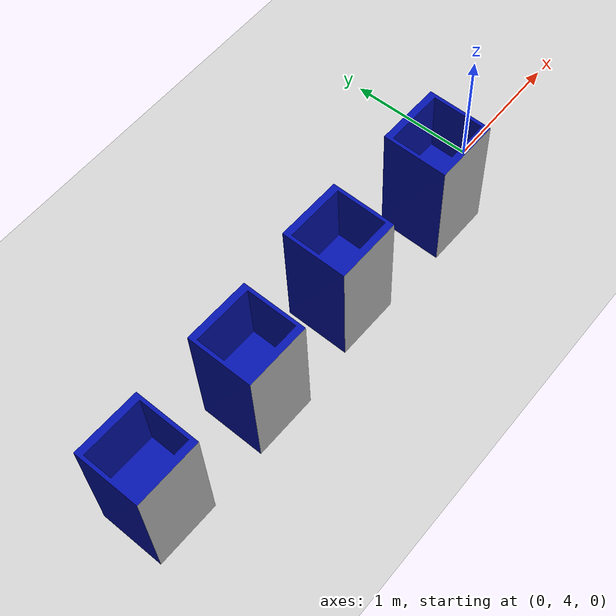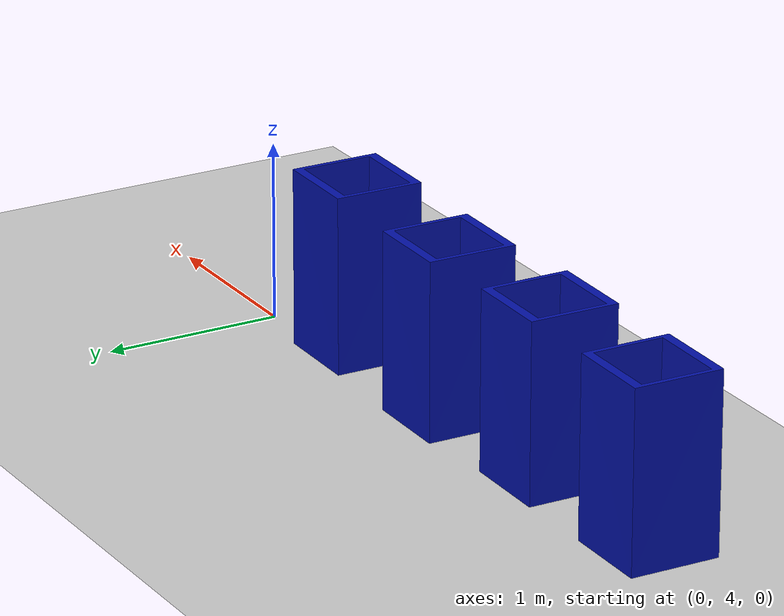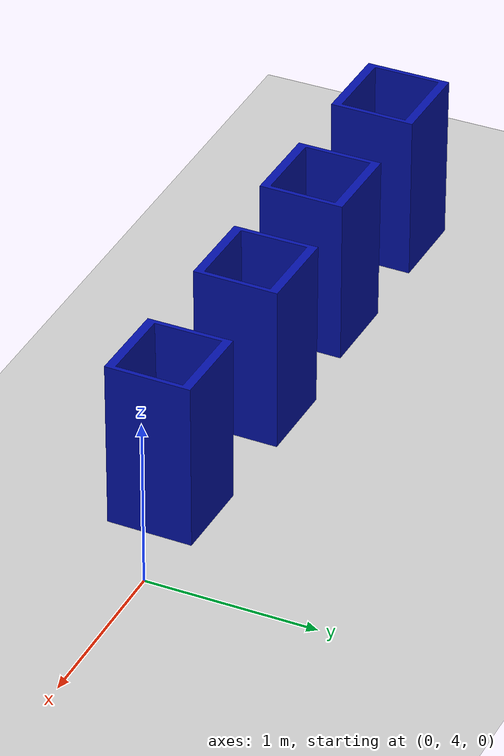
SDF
<sdf version="1.6">
 <world name="default">
  <light name="sun" type="directional">
   <pose>0 0 10 0 -0 0</pose>
   <diffuse>0.8 0.8 0.8 1</diffuse>
   <specular>0.2 0.2 0.2 1</specular>
   <attenuation>
    <range>1000</range>
    <constant>0.9</constant>
    <linear>0.01</linear>
    <quadratic>0.001</quadratic>
   </attenuation>
   <direction>-0.5 0.1 -0.9</direction>
  </light>
  <model name="ground_plane">
   <static>1</static>
   <link name="link">
    <collision name="collision">
     <geometry><plane><normal>0 0 1</normal><size>100 100</size></plane></geometry>
     <surface>
      <contact><collide_bitmask>65535</collide_bitmask></contact>
      <friction><ode><mu>100</mu><mu2>50</mu2></ode></friction>
     </surface>
    </collision>
    <visual name="visual">
     <cast_shadows>0</cast_shadows>
     <geometry><plane><normal>0 0 1</normal><size>100 100</size></plane></geometry>
     <material>
      <script><uri>file://media/materials/scripts/gazebo.material</uri><name>Gazebo/Grey</name></script>
     </material>
    </visual>
   </link>
  </model>
  <gravity>0 0 -9.8</gravity>
  <magnetic_field>6e-06 2.3e-05 -4.2e-05</magnetic_field>
  <atmosphere type="adiabatic"/>
  <physics name="default_physics" default="0" type="ode">
   <max_step_size>0.001</max_step_size>
   <real_time_factor>1</real_time_factor>
   <real_time_update_rate>1000</real_time_update_rate>
  </physics>
  <scene><ambient>0.4 0.4 0.4 1</ambient><background>0.7 0.7 0.7 1</background><shadows>1</shadows></scene>
  <audio><device>default</device></audio>
  <spherical_coordinates>
   <surface_model>EARTH_WGS84</surface_model>
   <latitude_deg>0</latitude_deg>
   <longitude_deg>0</longitude_deg>
   <elevation>0</elevation>
   <heading_deg>0</heading_deg>
  </spherical_coordinates>
  <model name="rubbish_array">
   <model name="harm">
    <link name="link_0">
     <inertial>
      <mass>1</mass>
      <inertia>
       <ixx>0.166667</ixx>
       <ixy>0</ixy>
       <ixz>0</ixz>
       <iyy>0.166667</iyy>
       <iyz>0</iyz>
       <izz>0.166667</izz>
      </inertia>
     </inertial>
     <visual name="visual">
      <geometry>
       <mesh>
        <uri>/home/cydia2001/catkin/src/initial_pose/models/model_res/harm/rubbish_bin.dae</uri>
        <scale>0.5 0.5 0.5</scale>
       </mesh>
      </geometry>
      <material><shader type="vertex"><normal_map>__default__</normal_map></shader></material>
     </visual>
     <collision name="collision">
      <geometry>
       <mesh><uri>$(find initial_pose)/models/model_res/harm/rubbish_bin.dae</uri><scale>0.5 0.5 0.5</scale></mesh>
      </geometry>
      <surface>
       <friction>
        <ode><mu>1</mu><mu2>1</mu2><fdir1>0 0 0</fdir1><slip1>0</slip1><slip2>0</slip2></ode>
        <torsional>
         <coefficient>1</coefficient>
         <patch_radius>0</patch_radius>
         <surface_radius>0</surface_radius>
         <use_patch_radius>1</use_patch_radius>
         <ode><slip>0</slip></ode>
        </torsional>
       </friction>
       <bounce><restitution_coefficient>0</restitution_coefficient><threshold>1e+06</threshold></bounce>
       <contact>
        <collide_without_contact>0</collide_without_contact>
        <collide_without_contact_bitmask>1</collide_without_contact_bitmask>
        <collide_bitmask>1</collide_bitmask>
        <ode>
         <soft_cfm>0</soft_cfm>
         <soft_erp>0.2</soft_erp>
         <kp>1e+13</kp>
         <kd>1</kd>
         <max_vel>0.01</max_vel>
         <min_depth>0</min_depth>
        </ode>
        <bullet>
         <split_impulse>1</split_impulse>
         <split_impulse_penetration_threshold>-0.01</split_impulse_penetration_threshold>
         <soft_cfm>0</soft_cfm>
         <soft_erp>0.2</soft_erp>
         <kp>1e+13</kp>
         <kd>1</kd>
        </bullet>
       </contact>
      </surface>
     </collision>
    </link>
    <static>1</static>
    <allow_auto_disable>0</allow_auto_disable>
    <pose>1.42865 0.032418 0 0 -0 0</pose>
   </model>
   <model name="kitchen">
    <link name="link_0">
     <inertial>
      <mass>1</mass>
      <inertia>
       <ixx>0.166667</ixx>
       <ixy>0</ixy>
       <ixz>0</ixz>
       <iyy>0.166667</iyy>
       <iyz>0</iyz>
       <izz>0.166667</izz>
      </inertia>
     </inertial>
     <visual name="visual">
      <geometry>
       <mesh>
        <uri>/home/cydia2001/catkin/src/initial_pose/models/model_res/kitchen/rubbish_bin.dae</uri>
        <scale>0.5 0.5 0.5</scale>
       </mesh>
      </geometry>
      <material><shader type="vertex"><normal_map>__default__</normal_map></shader></material>
     </visual>
     <collision name="collision">
      <geometry>
       <mesh>
        <uri>/home/cydia2001/catkin/src/initial_pose/models/model_res/kitchen/rubbish_bin.dae</uri>
        <scale>0.5 0.5 0.5</scale>
       </mesh>
      </geometry>
      <surface>
       <friction>
        <ode><mu>1</mu><mu2>1</mu2><fdir1>0 0 0</fdir1><slip1>0</slip1><slip2>0</slip2></ode>
        <torsional>
         <coefficient>1</coefficient>
         <patch_radius>0</patch_radius>
         <surface_radius>0</surface_radius>
         <use_patch_radius>1</use_patch_radius>
         <ode><slip>0</slip></ode>
        </torsional>
       </friction>
       <bounce><restitution_coefficient>0</restitution_coefficient><threshold>1e+06</threshold></bounce>
       <contact>
        <collide_without_contact>0</collide_without_contact>
        <collide_without_contact_bitmask>1</collide_without_contact_bitmask>
        <collide_bitmask>1</collide_bitmask>
        <ode>
         <soft_cfm>0</soft_cfm>
         <soft_erp>0.2</soft_erp>
         <kp>1e+13</kp>
         <kd>1</kd>
         <max_vel>0.01</max_vel>
         <min_depth>0</min_depth>
        </ode>
        <bullet>
         <split_impulse>1</split_impulse>
         <split_impulse_penetration_threshold>-0.01</split_impulse_penetration_threshold>
         <soft_cfm>0</soft_cfm>
         <soft_erp>0.2</soft_erp>
         <kp>1e+13</kp>
         <kd>1</kd>
        </bullet>
       </contact>
      </surface>
     </collision>
    </link>
    <static>1</static>
    <allow_auto_disable>0</allow_auto_disable>
    <pose>0.476928 0.019419 0 0 -0 0</pose>
   </model>
   <model name="others">
    <link name="link_0">
     <inertial>
      <mass>1</mass>
      <inertia>
       <ixx>0.166667</ixx>
       <ixy>0</ixy>
       <ixz>0</ixz>
       <iyy>0.166667</iyy>
       <iyz>0</iyz>
       <izz>0.166667</izz>
      </inertia>
     </inertial>
     <visual name="visual">
      <geometry>
       <mesh>
        <uri>/home/cydia2001/catkin/src/initial_pose/models/model_res/others/rubbish_bin.dae</uri>
        <scale>0.5 0.5 0.5</scale>
       </mesh>
      </geometry>
      <material><shader type="vertex"><normal_map>__default__</normal_map></shader></material>
     </visual>
     <collision name="collision">
      <geometry>
       <mesh>
        <uri>/home/cydia2001/catkin/src/initial_pose/models/model_res/others/rubbish_bin.dae</uri>
        <scale>0.5 0.5 0.5</scale>
       </mesh>
      </geometry>
      <surface>
       <friction>
        <ode><mu>1</mu><mu2>1</mu2><fdir1>0 0 0</fdir1><slip1>0</slip1><slip2>0</slip2></ode>
        <torsional>
         <coefficient>1</coefficient>
         <patch_radius>0</patch_radius>
         <surface_radius>0</surface_radius>
         <use_patch_radius>1</use_patch_radius>
         <ode><slip>0</slip></ode>
        </torsional>
       </friction>
       <bounce><restitution_coefficient>0</restitution_coefficient><threshold>1e+06</threshold></bounce>
       <contact>
        <collide_without_contact>0</collide_without_contact>
        <collide_without_contact_bitmask>1</collide_without_contact_bitmask>
        <collide_bitmask>1</collide_bitmask>
        <ode>
         <soft_cfm>0</soft_cfm>
         <soft_erp>0.2</soft_erp>
         <kp>1e+13</kp>
         <kd>1</kd>
         <max_vel>0.01</max_vel>
         <min_depth>0</min_depth>
        </ode>
        <bullet>
         <split_impulse>1</split_impulse>
         <split_impulse_penetration_threshold>-0.01</split_impulse_penetration_threshold>
         <soft_cfm>0</soft_cfm>
         <soft_erp>0.2</soft_erp>
         <kp>1e+13</kp>
         <kd>1</kd>
        </bullet>
       </contact>
      </surface>
     </collision>
    </link>
    <static>1</static>
    <allow_auto_disable>0</allow_auto_disable>
    <pose>-0.448312 -0.033052 0 0 -0 0</pose>
   </model>
   <model name="recycle">
    <link name="link_0">
     <inertial>
      <mass>1</mass>
      <inertia>
       <ixx>0.166667</ixx>
       <ixy>0</ixy>
       <ixz>0</ixz>
       <iyy>0.166667</iyy>
       <iyz>0</iyz>
       <izz>0.166667</izz>
      </inertia>
     </inertial>
     <visual name="visual">
      <geometry>
       <mesh>
        <uri>/home/cydia2001/catkin/src/initial_pose/models/model_res/recycle/rubbish_bin.dae</uri>
        <scale>0.5 0.5 0.5</scale>
       </mesh>
      </geometry>
      <material><shader type="vertex"><normal_map>__default__</normal_map></shader></material>
     </visual>
     <collision name="collision">
      <geometry>
       <mesh>
        <uri>/home/cydia2001/catkin/src/initial_pose/models/model_res/recycle/rubbish_bin.dae</uri>
        <scale>0.5 0.5 0.5</scale>
       </mesh>
      </geometry>
      <surface>
       <friction>
        <ode><mu>1</mu><mu2>1</mu2><fdir1>0 0 0</fdir1><slip1>0</slip1><slip2>0</slip2></ode>
        <torsional>
         <coefficient>1</coefficient>
         <patch_radius>0</patch_radius>
         <surface_radius>0</surface_radius>
         <use_patch_radius>1</use_patch_radius>
         <ode><slip>0</slip></ode>
        </torsional>
       </friction>
       <bounce><restitution_coefficient>0</restitution_coefficient><threshold>1e+06</threshold></bounce>
       <contact>
        <collide_without_contact>0</collide_without_contact>
        <collide_without_contact_bitmask>1</collide_without_contact_bitmask>
        <collide_bitmask>1</collide_bitmask>
        <ode>
         <soft_cfm>0</soft_cfm>
         <soft_erp>0.2</soft_erp>
         <kp>1e+13</kp>
         <kd>1</kd>
         <max_vel>0.01</max_vel>
         <min_depth>0</min_depth>
        </ode>
        <bullet>
         <split_impulse>1</split_impulse>
         <split_impulse_penetration_threshold>-0.01</split_impulse_penetration_threshold>
         <soft_cfm>0</soft_cfm>
         <soft_erp>0.2</soft_erp>
         <kp>1e+13</kp>
         <kd>1</kd>
        </bullet>
       </contact>
      </surface>
     </collision>
    </link>
    <static>1</static>
    <allow_auto_disable>0</allow_auto_disable>
    <pose>-1.45727 -0.018798 0 0 -0 0</pose>
   </model>
   <static>0</static>
   <pose>-2.0954 3.85102 0 0 -0 3.1248</pose>
  </model>
 </world>
</sdf>
